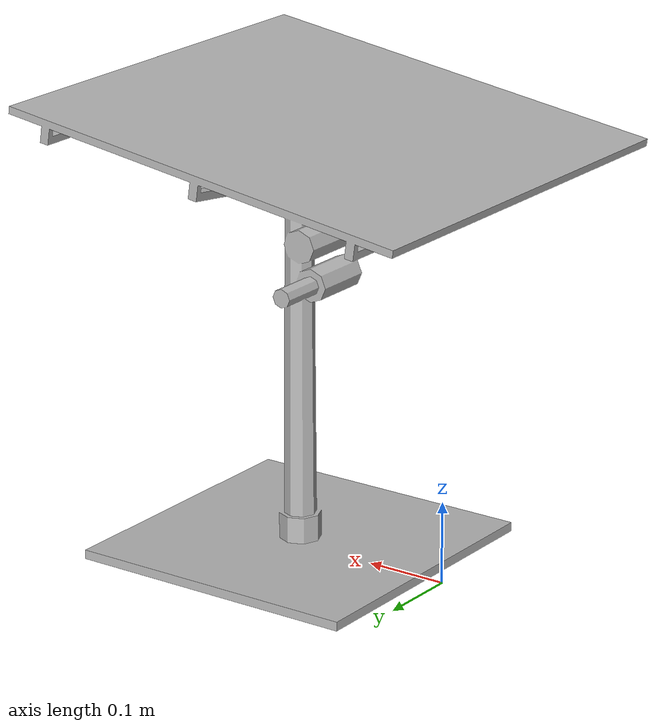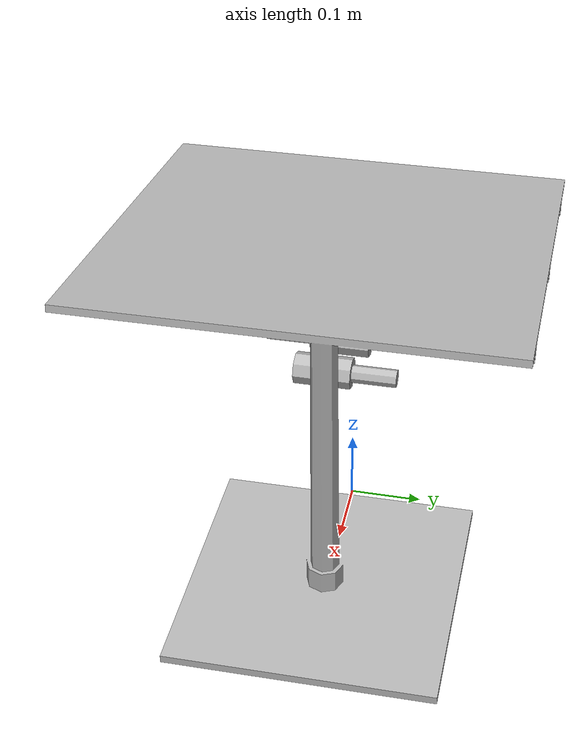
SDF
<?xml version="1.0" ?>
<sdf version="1.6">
  <model name="solar_panel">

    <static>true</static>

    <link name="link">

      <visual name="visual">
        <pose>0 0 0 1.57079632679 0 0</pose>
        <geometry>
          <mesh>
            <uri>model://solar_panel/meshes/solar_panel.obj</uri>
            <scale>0.5 0.5 0.5</scale>
          </mesh>
        </geometry>
      </visual>

      <collision name="collision">
        <geometry>
          <box>
            <size>1 1 0.1</size>
          </box>
        </geometry>
      </collision>

    </link>

  </model>
</sdf>
